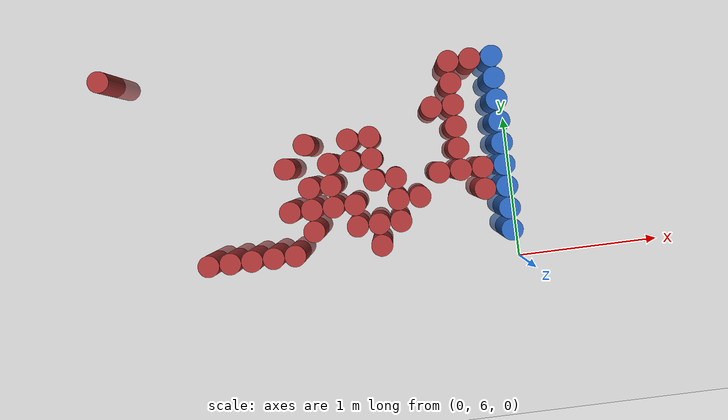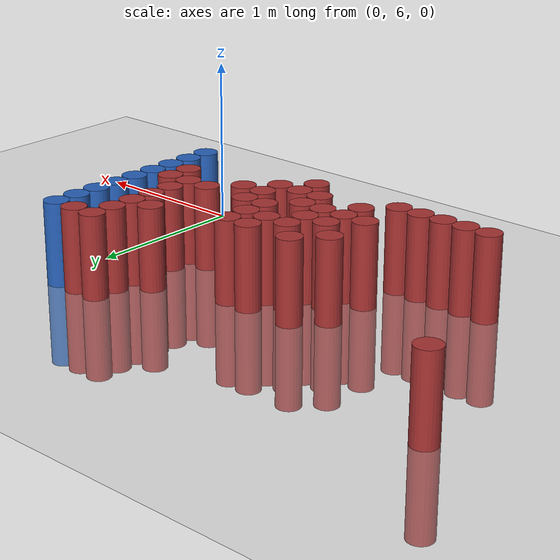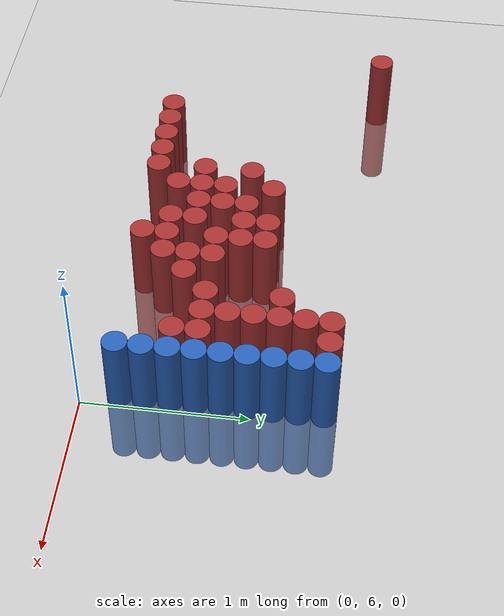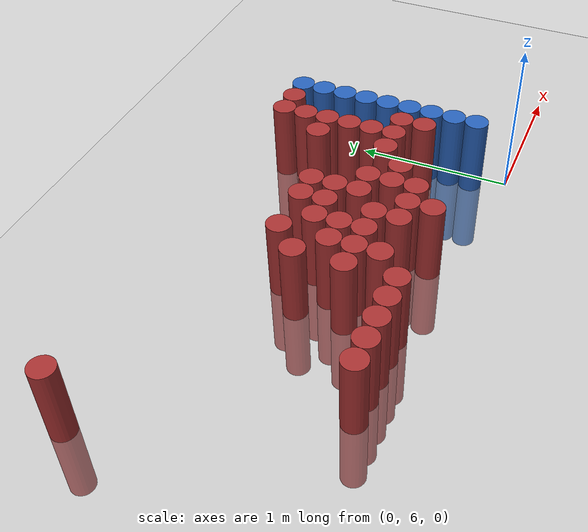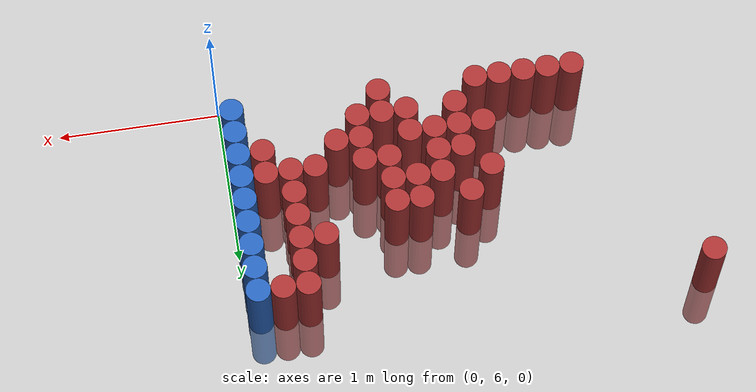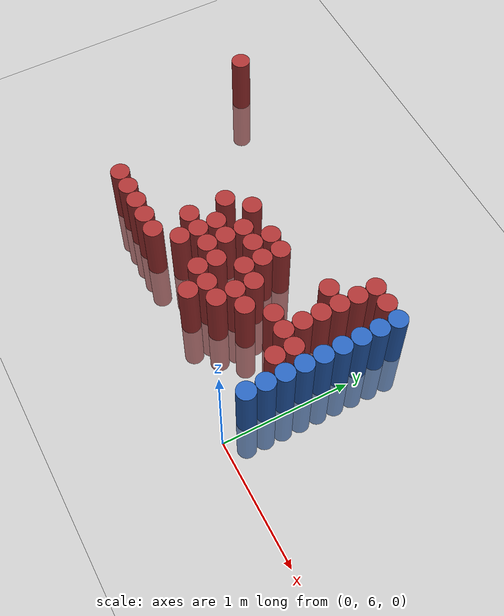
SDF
<sdf version="1.6">
 <world name="default">
  <model name="ground_plane">
   <static>1</static>
   <link name="link">
    <collision name="collision">
     <geometry><plane><normal>0 0 1</normal><size>100 100</size></plane></geometry>
     <surface><friction><ode><mu>100</mu><mu2>50</mu2></ode></friction></surface>
    </collision>
    <visual name="visual">
     <cast_shadows>0</cast_shadows>
     <geometry><plane><normal>0 0 1</normal><size>100 100</size></plane></geometry>
     <material>
      <script><uri>file://media/materials/scripts/gazebo.material</uri><name>Gazebo/Grey</name></script>
     </material>
    </visual>
   </link>
  </model>
  <model name="unit_cylinder_211">
   <static>1</static>
   <pose>-2.775000 7.575000 0.000000 0.000000 0.000000 0.000000</pose>
   <link name="link">
    <inertial>
     <mass>1</mass>
     <inertia><ixx>0.145833</ixx><ixy>0</ixy><ixz>0</ixz><iyy>0.145833</iyy><iyz>0</iyz><izz>0.125</izz></inertia>
    </inertial>
    <collision name="collision">
     <geometry><cylinder><radius>0.075000</radius><length>1</length></cylinder></geometry>
    </collision>
    <visual name="visual">
     <geometry><cylinder><radius>0.075000</radius><length>1</length></cylinder></geometry>
     <material>
      <ambient>0.648000 0.192000 0.192000 1</ambient>
      <diffuse>0.648000 0.192000 0.192000 1</diffuse>
     </material>
     <material>
      <script><name>Gazebo/Grey</name><uri>file://media/materials/scripts/gazebo.material</uri></script>
     </material>
    </visual>
   </link>
  </model>
  <model name="unit_cylinder_219">
   <static>1</static>
   <pose>-2.175000 6.225000 0.000000 0.000000 0.000000 0.000000</pose>
   <link name="link">
    <inertial>
     <mass>1</mass>
     <inertia><ixx>0.145833</ixx><ixy>0</ixy><ixz>0</ixz><iyy>0.145833</iyy><iyz>0</iyz><izz>0.125</izz></inertia>
    </inertial>
    <collision name="collision">
     <geometry><cylinder><radius>0.075000</radius><length>1</length></cylinder></geometry>
    </collision>
    <visual name="visual">
     <geometry><cylinder><radius>0.075000</radius><length>1</length></cylinder></geometry>
     <material>
      <ambient>0.648000 0.192000 0.192000 1</ambient>
      <diffuse>0.648000 0.192000 0.192000 1</diffuse>
     </material>
     <material>
      <script><name>Gazebo/Grey</name><uri>file://media/materials/scripts/gazebo.material</uri></script>
     </material>
    </visual>
   </link>
  </model>
  <model name="unit_cylinder_221">
   <static>1</static>
   <pose>-2.025000 6.225000 0.000000 0.000000 0.000000 0.000000</pose>
   <link name="link">
    <inertial>
     <mass>1</mass>
     <inertia><ixx>0.145833</ixx><ixy>0</ixy><ixz>0</ixz><iyy>0.145833</iyy><iyz>0</iyz><izz>0.125</izz></inertia>
    </inertial>
    <collision name="collision">
     <geometry><cylinder><radius>0.075000</radius><length>1</length></cylinder></geometry>
    </collision>
    <visual name="visual">
     <geometry><cylinder><radius>0.075000</radius><length>1</length></cylinder></geometry>
     <material>
      <ambient>0.648000 0.192000 0.192000 1</ambient>
      <diffuse>0.648000 0.192000 0.192000 1</diffuse>
     </material>
     <material>
      <script><name>Gazebo/Grey</name><uri>file://media/materials/scripts/gazebo.material</uri></script>
     </material>
    </visual>
   </link>
  </model>
  <model name="unit_cylinder_224">
   <static>1</static>
   <pose>-1.875000 6.225000 0.000000 0.000000 0.000000 0.000000</pose>
   <link name="link">
    <inertial>
     <mass>1</mass>
     <inertia><ixx>0.145833</ixx><ixy>0</ixy><ixz>0</ixz><iyy>0.145833</iyy><iyz>0</iyz><izz>0.125</izz></inertia>
    </inertial>
    <collision name="collision">
     <geometry><cylinder><radius>0.075000</radius><length>1</length></cylinder></geometry>
    </collision>
    <visual name="visual">
     <geometry><cylinder><radius>0.075000</radius><length>1</length></cylinder></geometry>
     <material>
      <ambient>0.648000 0.192000 0.192000 1</ambient>
      <diffuse>0.648000 0.192000 0.192000 1</diffuse>
     </material>
     <material>
      <script><name>Gazebo/Grey</name><uri>file://media/materials/scripts/gazebo.material</uri></script>
     </material>
    </visual>
   </link>
  </model>
  <model name="unit_cylinder_227">
   <static>1</static>
   <pose>-1.725000 6.225000 0.000000 0.000000 0.000000 0.000000</pose>
   <link name="link">
    <inertial>
     <mass>1</mass>
     <inertia><ixx>0.145833</ixx><ixy>0</ixy><ixz>0</ixz><iyy>0.145833</iyy><iyz>0</iyz><izz>0.125</izz></inertia>
    </inertial>
    <collision name="collision">
     <geometry><cylinder><radius>0.075000</radius><length>1</length></cylinder></geometry>
    </collision>
    <visual name="visual">
     <geometry><cylinder><radius>0.075000</radius><length>1</length></cylinder></geometry>
     <material>
      <ambient>0.648000 0.192000 0.192000 1</ambient>
      <diffuse>0.648000 0.192000 0.192000 1</diffuse>
     </material>
     <material>
      <script><name>Gazebo/Grey</name><uri>file://media/materials/scripts/gazebo.material</uri></script>
     </material>
    </visual>
   </link>
  </model>
  <model name="unit_cylinder_233">
   <static>1</static>
   <pose>-1.575000 6.225000 0.000000 0.000000 0.000000 0.000000</pose>
   <link name="link">
    <inertial>
     <mass>1</mass>
     <inertia><ixx>0.145833</ixx><ixy>0</ixy><ixz>0</ixz><iyy>0.145833</iyy><iyz>0</iyz><izz>0.125</izz></inertia>
    </inertial>
    <collision name="collision">
     <geometry><cylinder><radius>0.075000</radius><length>1</length></cylinder></geometry>
    </collision>
    <visual name="visual">
     <geometry><cylinder><radius>0.075000</radius><length>1</length></cylinder></geometry>
     <material>
      <ambient>0.648000 0.192000 0.192000 1</ambient>
      <diffuse>0.648000 0.192000 0.192000 1</diffuse>
     </material>
     <material>
      <script><name>Gazebo/Grey</name><uri>file://media/materials/scripts/gazebo.material</uri></script>
     </material>
    </visual>
   </link>
  </model>
  <model name="unit_cylinder_234">
   <static>1</static>
   <pose>-1.575000 6.525000 0.000000 0.000000 0.000000 0.000000</pose>
   <link name="link">
    <inertial>
     <mass>1</mass>
     <inertia><ixx>0.145833</ixx><ixy>0</ixy><ixz>0</ixz><iyy>0.145833</iyy><iyz>0</iyz><izz>0.125</izz></inertia>
    </inertial>
    <collision name="collision">
     <geometry><cylinder><radius>0.075000</radius><length>1</length></cylinder></geometry>
    </collision>
    <visual name="visual">
     <geometry><cylinder><radius>0.075000</radius><length>1</length></cylinder></geometry>
     <material>
      <ambient>0.648000 0.192000 0.192000 1</ambient>
      <diffuse>0.648000 0.192000 0.192000 1</diffuse>
     </material>
     <material>
      <script><name>Gazebo/Grey</name><uri>file://media/materials/scripts/gazebo.material</uri></script>
     </material>
    </visual>
   </link>
  </model>
  <model name="unit_cylinder_235">
   <static>1</static>
   <pose>-1.575000 6.825000 0.000000 0.000000 0.000000 0.000000</pose>
   <link name="link">
    <inertial>
     <mass>1</mass>
     <inertia><ixx>0.145833</ixx><ixy>0</ixy><ixz>0</ixz><iyy>0.145833</iyy><iyz>0</iyz><izz>0.125</izz></inertia>
    </inertial>
    <collision name="collision">
     <geometry><cylinder><radius>0.075000</radius><length>1</length></cylinder></geometry>
    </collision>
    <visual name="visual">
     <geometry><cylinder><radius>0.075000</radius><length>1</length></cylinder></geometry>
     <material>
      <ambient>0.648000 0.192000 0.192000 1</ambient>
      <diffuse>0.648000 0.192000 0.192000 1</diffuse>
     </material>
     <material>
      <script><name>Gazebo/Grey</name><uri>file://media/materials/scripts/gazebo.material</uri></script>
     </material>
    </visual>
   </link>
  </model>
  <model name="unit_cylinder_242">
   <static>1</static>
   <pose>-1.425000 6.375000 0.000000 0.000000 0.000000 0.000000</pose>
   <link name="link">
    <inertial>
     <mass>1</mass>
     <inertia><ixx>0.145833</ixx><ixy>0</ixy><ixz>0</ixz><iyy>0.145833</iyy><iyz>0</iyz><izz>0.125</izz></inertia>
    </inertial>
    <collision name="collision">
     <geometry><cylinder><radius>0.075000</radius><length>1</length></cylinder></geometry>
    </collision>
    <visual name="visual">
     <geometry><cylinder><radius>0.075000</radius><length>1</length></cylinder></geometry>
     <material>
      <ambient>0.648000 0.192000 0.192000 1</ambient>
      <diffuse>0.648000 0.192000 0.192000 1</diffuse>
     </material>
     <material>
      <script><name>Gazebo/Grey</name><uri>file://media/materials/scripts/gazebo.material</uri></script>
     </material>
    </visual>
   </link>
  </model>
  <model name="unit_cylinder_243">
   <static>1</static>
   <pose>-1.425000 6.525000 0.000000 0.000000 0.000000 0.000000</pose>
   <link name="link">
    <inertial>
     <mass>1</mass>
     <inertia><ixx>0.145833</ixx><ixy>0</ixy><ixz>0</ixz><iyy>0.145833</iyy><iyz>0</iyz><izz>0.125</izz></inertia>
    </inertial>
    <collision name="collision">
     <geometry><cylinder><radius>0.075000</radius><length>1</length></cylinder></geometry>
    </collision>
    <visual name="visual">
     <geometry><cylinder><radius>0.075000</radius><length>1</length></cylinder></geometry>
     <material>
      <ambient>0.648000 0.192000 0.192000 1</ambient>
      <diffuse>0.648000 0.192000 0.192000 1</diffuse>
     </material>
     <material>
      <script><name>Gazebo/Grey</name><uri>file://media/materials/scripts/gazebo.material</uri></script>
     </material>
    </visual>
   </link>
  </model>
  <model name="unit_cylinder_244">
   <static>1</static>
   <pose>-1.425000 6.675000 0.000000 0.000000 0.000000 0.000000</pose>
   <link name="link">
    <inertial>
     <mass>1</mass>
     <inertia><ixx>0.145833</ixx><ixy>0</ixy><ixz>0</ixz><iyy>0.145833</iyy><iyz>0</iyz><izz>0.125</izz></inertia>
    </inertial>
    <collision name="collision">
     <geometry><cylinder><radius>0.075000</radius><length>1</length></cylinder></geometry>
    </collision>
    <visual name="visual">
     <geometry><cylinder><radius>0.075000</radius><length>1</length></cylinder></geometry>
     <material>
      <ambient>0.648000 0.192000 0.192000 1</ambient>
      <diffuse>0.648000 0.192000 0.192000 1</diffuse>
     </material>
     <material>
      <script><name>Gazebo/Grey</name><uri>file://media/materials/scripts/gazebo.material</uri></script>
     </material>
    </visual>
   </link>
  </model>
  <model name="unit_cylinder_245">
   <static>1</static>
   <pose>-1.425000 6.975000 0.000000 0.000000 0.000000 0.000000</pose>
   <link name="link">
    <inertial>
     <mass>1</mass>
     <inertia><ixx>0.145833</ixx><ixy>0</ixy><ixz>0</ixz><iyy>0.145833</iyy><iyz>0</iyz><izz>0.125</izz></inertia>
    </inertial>
    <collision name="collision">
     <geometry><cylinder><radius>0.075000</radius><length>1</length></cylinder></geometry>
    </collision>
    <visual name="visual">
     <geometry><cylinder><radius>0.075000</radius><length>1</length></cylinder></geometry>
     <material>
      <ambient>0.648000 0.192000 0.192000 1</ambient>
      <diffuse>0.648000 0.192000 0.192000 1</diffuse>
     </material>
     <material>
      <script><name>Gazebo/Grey</name><uri>file://media/materials/scripts/gazebo.material</uri></script>
     </material>
    </visual>
   </link>
  </model>
  <model name="unit_cylinder_252">
   <static>1</static>
   <pose>-1.275000 6.525000 0.000000 0.000000 0.000000 0.000000</pose>
   <link name="link">
    <inertial>
     <mass>1</mass>
     <inertia><ixx>0.145833</ixx><ixy>0</ixy><ixz>0</ixz><iyy>0.145833</iyy><iyz>0</iyz><izz>0.125</izz></inertia>
    </inertial>
    <collision name="collision">
     <geometry><cylinder><radius>0.075000</radius><length>1</length></cylinder></geometry>
    </collision>
    <visual name="visual">
     <geometry><cylinder><radius>0.075000</radius><length>1</length></cylinder></geometry>
     <material>
      <ambient>0.648000 0.192000 0.192000 1</ambient>
      <diffuse>0.648000 0.192000 0.192000 1</diffuse>
     </material>
     <material>
      <script><name>Gazebo/Grey</name><uri>file://media/materials/scripts/gazebo.material</uri></script>
     </material>
    </visual>
   </link>
  </model>
  <model name="unit_cylinder_253">
   <static>1</static>
   <pose>-1.275000 6.675000 0.000000 0.000000 0.000000 0.000000</pose>
   <link name="link">
    <inertial>
     <mass>1</mass>
     <inertia><ixx>0.145833</ixx><ixy>0</ixy><ixz>0</ixz><iyy>0.145833</iyy><iyz>0</iyz><izz>0.125</izz></inertia>
    </inertial>
    <collision name="collision">
     <geometry><cylinder><radius>0.075000</radius><length>1</length></cylinder></geometry>
    </collision>
    <visual name="visual">
     <geometry><cylinder><radius>0.075000</radius><length>1</length></cylinder></geometry>
     <material>
      <ambient>0.648000 0.192000 0.192000 1</ambient>
      <diffuse>0.648000 0.192000 0.192000 1</diffuse>
     </material>
     <material>
      <script><name>Gazebo/Grey</name><uri>file://media/materials/scripts/gazebo.material</uri></script>
     </material>
    </visual>
   </link>
  </model>
  <model name="unit_cylinder_254">
   <static>1</static>
   <pose>-1.275000 6.825000 0.000000 0.000000 0.000000 0.000000</pose>
   <link name="link">
    <inertial>
     <mass>1</mass>
     <inertia><ixx>0.145833</ixx><ixy>0</ixy><ixz>0</ixz><iyy>0.145833</iyy><iyz>0</iyz><izz>0.125</izz></inertia>
    </inertial>
    <collision name="collision">
     <geometry><cylinder><radius>0.075000</radius><length>1</length></cylinder></geometry>
    </collision>
    <visual name="visual">
     <geometry><cylinder><radius>0.075000</radius><length>1</length></cylinder></geometry>
     <material>
      <ambient>0.648000 0.192000 0.192000 1</ambient>
      <diffuse>0.648000 0.192000 0.192000 1</diffuse>
     </material>
     <material>
      <script><name>Gazebo/Grey</name><uri>file://media/materials/scripts/gazebo.material</uri></script>
     </material>
    </visual>
   </link>
  </model>
  <model name="unit_cylinder_258">
   <static>1</static>
   <pose>-1.125000 6.375000 0.000000 0.000000 0.000000 0.000000</pose>
   <link name="link">
    <inertial>
     <mass>1</mass>
     <inertia><ixx>0.145833</ixx><ixy>0</ixy><ixz>0</ixz><iyy>0.145833</iyy><iyz>0</iyz><izz>0.125</izz></inertia>
    </inertial>
    <collision name="collision">
     <geometry><cylinder><radius>0.075000</radius><length>1</length></cylinder></geometry>
    </collision>
    <visual name="visual">
     <geometry><cylinder><radius>0.075000</radius><length>1</length></cylinder></geometry>
     <material>
      <ambient>0.648000 0.192000 0.192000 1</ambient>
      <diffuse>0.648000 0.192000 0.192000 1</diffuse>
     </material>
     <material>
      <script><name>Gazebo/Grey</name><uri>file://media/materials/scripts/gazebo.material</uri></script>
     </material>
    </visual>
   </link>
  </model>
  <model name="unit_cylinder_259">
   <static>1</static>
   <pose>-1.125000 6.525000 0.000000 0.000000 0.000000 0.000000</pose>
   <link name="link">
    <inertial>
     <mass>1</mass>
     <inertia><ixx>0.145833</ixx><ixy>0</ixy><ixz>0</ixz><iyy>0.145833</iyy><iyz>0</iyz><izz>0.125</izz></inertia>
    </inertial>
    <collision name="collision">
     <geometry><cylinder><radius>0.075000</radius><length>1</length></cylinder></geometry>
    </collision>
    <visual name="visual">
     <geometry><cylinder><radius>0.075000</radius><length>1</length></cylinder></geometry>
     <material>
      <ambient>0.648000 0.192000 0.192000 1</ambient>
      <diffuse>0.648000 0.192000 0.192000 1</diffuse>
     </material>
     <material>
      <script><name>Gazebo/Grey</name><uri>file://media/materials/scripts/gazebo.material</uri></script>
     </material>
    </visual>
   </link>
  </model>
  <model name="unit_cylinder_260">
   <static>1</static>
   <pose>-1.125000 6.825000 0.000000 0.000000 0.000000 0.000000</pose>
   <link name="link">
    <inertial>
     <mass>1</mass>
     <inertia><ixx>0.145833</ixx><ixy>0</ixy><ixz>0</ixz><iyy>0.145833</iyy><iyz>0</iyz><izz>0.125</izz></inertia>
    </inertial>
    <collision name="collision">
     <geometry><cylinder><radius>0.075000</radius><length>1</length></cylinder></geometry>
    </collision>
    <visual name="visual">
     <geometry><cylinder><radius>0.075000</radius><length>1</length></cylinder></geometry>
     <material>
      <ambient>0.648000 0.192000 0.192000 1</ambient>
      <diffuse>0.648000 0.192000 0.192000 1</diffuse>
     </material>
     <material>
      <script><name>Gazebo/Grey</name><uri>file://media/materials/scripts/gazebo.material</uri></script>
     </material>
    </visual>
   </link>
  </model>
  <model name="unit_cylinder_261">
   <static>1</static>
   <pose>-1.125000 6.975000 0.000000 0.000000 0.000000 0.000000</pose>
   <link name="link">
    <inertial>
     <mass>1</mass>
     <inertia><ixx>0.145833</ixx><ixy>0</ixy><ixz>0</ixz><iyy>0.145833</iyy><iyz>0</iyz><izz>0.125</izz></inertia>
    </inertial>
    <collision name="collision">
     <geometry><cylinder><radius>0.075000</radius><length>1</length></cylinder></geometry>
    </collision>
    <visual name="visual">
     <geometry><cylinder><radius>0.075000</radius><length>1</length></cylinder></geometry>
     <material>
      <ambient>0.648000 0.192000 0.192000 1</ambient>
      <diffuse>0.648000 0.192000 0.192000 1</diffuse>
     </material>
     <material>
      <script><name>Gazebo/Grey</name><uri>file://media/materials/scripts/gazebo.material</uri></script>
     </material>
    </visual>
   </link>
  </model>
  <model name="unit_cylinder_262">
   <static>1</static>
   <pose>-0.975000 6.225000 0.000000 0.000000 0.000000 0.000000</pose>
   <link name="link">
    <inertial>
     <mass>1</mass>
     <inertia><ixx>0.145833</ixx><ixy>0</ixy><ixz>0</ixz><iyy>0.145833</iyy><iyz>0</iyz><izz>0.125</izz></inertia>
    </inertial>
    <collision name="collision">
     <geometry><cylinder><radius>0.075000</radius><length>1</length></cylinder></geometry>
    </collision>
    <visual name="visual">
     <geometry><cylinder><radius>0.075000</radius><length>1</length></cylinder></geometry>
     <material>
      <ambient>0.648000 0.192000 0.192000 1</ambient>
      <diffuse>0.648000 0.192000 0.192000 1</diffuse>
     </material>
     <material>
      <script><name>Gazebo/Grey</name><uri>file://media/materials/scripts/gazebo.material</uri></script>
     </material>
    </visual>
   </link>
  </model>
  <model name="unit_cylinder_263">
   <static>1</static>
   <pose>-0.975000 6.375000 0.000000 0.000000 0.000000 0.000000</pose>
   <link name="link">
    <inertial>
     <mass>1</mass>
     <inertia><ixx>0.145833</ixx><ixy>0</ixy><ixz>0</ixz><iyy>0.145833</iyy><iyz>0</iyz><izz>0.125</izz></inertia>
    </inertial>
    <collision name="collision">
     <geometry><cylinder><radius>0.075000</radius><length>1</length></cylinder></geometry>
    </collision>
    <visual name="visual">
     <geometry><cylinder><radius>0.075000</radius><length>1</length></cylinder></geometry>
     <material>
      <ambient>0.648000 0.192000 0.192000 1</ambient>
      <diffuse>0.648000 0.192000 0.192000 1</diffuse>
     </material>
     <material>
      <script><name>Gazebo/Grey</name><uri>file://media/materials/scripts/gazebo.material</uri></script>
     </material>
    </visual>
   </link>
  </model>
  <model name="unit_cylinder_264">
   <static>1</static>
   <pose>-0.975000 6.675000 0.000000 0.000000 0.000000 0.000000</pose>
   <link name="link">
    <inertial>
     <mass>1</mass>
     <inertia><ixx>0.145833</ixx><ixy>0</ixy><ixz>0</ixz><iyy>0.145833</iyy><iyz>0</iyz><izz>0.125</izz></inertia>
    </inertial>
    <collision name="collision">
     <geometry><cylinder><radius>0.075000</radius><length>1</length></cylinder></geometry>
    </collision>
    <visual name="visual">
     <geometry><cylinder><radius>0.075000</radius><length>1</length></cylinder></geometry>
     <material>
      <ambient>0.648000 0.192000 0.192000 1</ambient>
      <diffuse>0.648000 0.192000 0.192000 1</diffuse>
     </material>
     <material>
      <script><name>Gazebo/Grey</name><uri>file://media/materials/scripts/gazebo.material</uri></script>
     </material>
    </visual>
   </link>
  </model>
  <model name="unit_cylinder_265">
   <static>1</static>
   <pose>-0.975000 6.825000 0.000000 0.000000 0.000000 0.000000</pose>
   <link name="link">
    <inertial>
     <mass>1</mass>
     <inertia><ixx>0.145833</ixx><ixy>0</ixy><ixz>0</ixz><iyy>0.145833</iyy><iyz>0</iyz><izz>0.125</izz></inertia>
    </inertial>
    <collision name="collision">
     <geometry><cylinder><radius>0.075000</radius><length>1</length></cylinder></geometry>
    </collision>
    <visual name="visual">
     <geometry><cylinder><radius>0.075000</radius><length>1</length></cylinder></geometry>
     <material>
      <ambient>0.648000 0.192000 0.192000 1</ambient>
      <diffuse>0.648000 0.192000 0.192000 1</diffuse>
     </material>
     <material>
      <script><name>Gazebo/Grey</name><uri>file://media/materials/scripts/gazebo.material</uri></script>
     </material>
    </visual>
   </link>
  </model>
  <model name="unit_cylinder_266">
   <static>1</static>
   <pose>-0.975000 6.975000 0.000000 0.000000 0.000000 0.000000</pose>
   <link name="link">
    <inertial>
     <mass>1</mass>
     <inertia><ixx>0.145833</ixx><ixy>0</ixy><ixz>0</ixz><iyy>0.145833</iyy><iyz>0</iyz><izz>0.125</izz></inertia>
    </inertial>
    <collision name="collision">
     <geometry><cylinder><radius>0.075000</radius><length>1</length></cylinder></geometry>
    </collision>
    <visual name="visual">
     <geometry><cylinder><radius>0.075000</radius><length>1</length></cylinder></geometry>
     <material>
      <ambient>0.648000 0.192000 0.192000 1</ambient>
      <diffuse>0.648000 0.192000 0.192000 1</diffuse>
     </material>
     <material>
      <script><name>Gazebo/Grey</name><uri>file://media/materials/scripts/gazebo.material</uri></script>
     </material>
    </visual>
   </link>
  </model>
  <model name="unit_cylinder_267">
   <static>1</static>
   <pose>-0.825000 6.375000 0.000000 0.000000 0.000000 0.000000</pose>
   <link name="link">
    <inertial>
     <mass>1</mass>
     <inertia><ixx>0.145833</ixx><ixy>0</ixy><ixz>0</ixz><iyy>0.145833</iyy><iyz>0</iyz><izz>0.125</izz></inertia>
    </inertial>
    <collision name="collision">
     <geometry><cylinder><radius>0.075000</radius><length>1</length></cylinder></geometry>
    </collision>
    <visual name="visual">
     <geometry><cylinder><radius>0.075000</radius><length>1</length></cylinder></geometry>
     <material>
      <ambient>0.648000 0.192000 0.192000 1</ambient>
      <diffuse>0.648000 0.192000 0.192000 1</diffuse>
     </material>
     <material>
      <script><name>Gazebo/Grey</name><uri>file://media/materials/scripts/gazebo.material</uri></script>
     </material>
    </visual>
   </link>
  </model>
  <model name="unit_cylinder_268">
   <static>1</static>
   <pose>-0.825000 6.525000 0.000000 0.000000 0.000000 0.000000</pose>
   <link name="link">
    <inertial>
     <mass>1</mass>
     <inertia><ixx>0.145833</ixx><ixy>0</ixy><ixz>0</ixz><iyy>0.145833</iyy><iyz>0</iyz><izz>0.125</izz></inertia>
    </inertial>
    <collision name="collision">
     <geometry><cylinder><radius>0.075000</radius><length>1</length></cylinder></geometry>
    </collision>
    <visual name="visual">
     <geometry><cylinder><radius>0.075000</radius><length>1</length></cylinder></geometry>
     <material>
      <ambient>0.648000 0.192000 0.192000 1</ambient>
      <diffuse>0.648000 0.192000 0.192000 1</diffuse>
     </material>
     <material>
      <script><name>Gazebo/Grey</name><uri>file://media/materials/scripts/gazebo.material</uri></script>
     </material>
    </visual>
   </link>
  </model>
  <model name="unit_cylinder_269">
   <static>1</static>
   <pose>-0.825000 6.675000 0.000000 0.000000 0.000000 0.000000</pose>
   <link name="link">
    <inertial>
     <mass>1</mass>
     <inertia><ixx>0.145833</ixx><ixy>0</ixy><ixz>0</ixz><iyy>0.145833</iyy><iyz>0</iyz><izz>0.125</izz></inertia>
    </inertial>
    <collision name="collision">
     <geometry><cylinder><radius>0.075000</radius><length>1</length></cylinder></geometry>
    </collision>
    <visual name="visual">
     <geometry><cylinder><radius>0.075000</radius><length>1</length></cylinder></geometry>
     <material>
      <ambient>0.648000 0.192000 0.192000 1</ambient>
      <diffuse>0.648000 0.192000 0.192000 1</diffuse>
     </material>
     <material>
      <script><name>Gazebo/Grey</name><uri>file://media/materials/scripts/gazebo.material</uri></script>
     </material>
    </visual>
   </link>
  </model>
  <model name="unit_cylinder_270">
   <static>1</static>
   <pose>-0.675000 6.525000 0.000000 0.000000 0.000000 0.000000</pose>
   <link name="link">
    <inertial>
     <mass>1</mass>
     <inertia><ixx>0.145833</ixx><ixy>0</ixy><ixz>0</ixz><iyy>0.145833</iyy><iyz>0</iyz><izz>0.125</izz></inertia>
    </inertial>
    <collision name="collision">
     <geometry><cylinder><radius>0.075000</radius><length>1</length></cylinder></geometry>
    </collision>
    <visual name="visual">
     <geometry><cylinder><radius>0.075000</radius><length>1</length></cylinder></geometry>
     <material>
      <ambient>0.648000 0.192000 0.192000 1</ambient>
      <diffuse>0.648000 0.192000 0.192000 1</diffuse>
     </material>
     <material>
      <script><name>Gazebo/Grey</name><uri>file://media/materials/scripts/gazebo.material</uri></script>
     </material>
    </visual>
   </link>
  </model>
  <model name="unit_cylinder_272">
   <static>1</static>
   <pose>-0.525000 6.675000 0.000000 0.000000 0.000000 0.000000</pose>
   <link name="link">
    <inertial>
     <mass>1</mass>
     <inertia><ixx>0.145833</ixx><ixy>0</ixy><ixz>0</ixz><iyy>0.145833</iyy><iyz>0</iyz><izz>0.125</izz></inertia>
    </inertial>
    <collision name="collision">
     <geometry><cylinder><radius>0.075000</radius><length>1</length></cylinder></geometry>
    </collision>
    <visual name="visual">
     <geometry><cylinder><radius>0.075000</radius><length>1</length></cylinder></geometry>
     <material>
      <ambient>0.648000 0.192000 0.192000 1</ambient>
      <diffuse>0.648000 0.192000 0.192000 1</diffuse>
     </material>
     <material>
      <script><name>Gazebo/Grey</name><uri>file://media/materials/scripts/gazebo.material</uri></script>
     </material>
    </visual>
   </link>
  </model>
  <model name="unit_cylinder_273">
   <static>1</static>
   <pose>-0.525000 7.125000 0.000000 0.000000 0.000000 0.000000</pose>
   <link name="link">
    <inertial>
     <mass>1</mass>
     <inertia><ixx>0.145833</ixx><ixy>0</ixy><ixz>0</ixz><iyy>0.145833</iyy><iyz>0</iyz><izz>0.125</izz></inertia>
    </inertial>
    <collision name="collision">
     <geometry><cylinder><radius>0.075000</radius><length>1</length></cylinder></geometry>
    </collision>
    <visual name="visual">
     <geometry><cylinder><radius>0.075000</radius><length>1</length></cylinder></geometry>
     <material>
      <ambient>0.648000 0.192000 0.192000 1</ambient>
      <diffuse>0.648000 0.192000 0.192000 1</diffuse>
     </material>
     <material>
      <script><name>Gazebo/Grey</name><uri>file://media/materials/scripts/gazebo.material</uri></script>
     </material>
    </visual>
   </link>
  </model>
  <model name="unit_cylinder_282">
   <static>1</static>
   <pose>-0.375000 6.675000 0.000000 0.000000 0.000000 0.000000</pose>
   <link name="link">
    <inertial>
     <mass>1</mass>
     <inertia><ixx>0.145833</ixx><ixy>0</ixy><ixz>0</ixz><iyy>0.145833</iyy><iyz>0</iyz><izz>0.125</izz></inertia>
    </inertial>
    <collision name="collision">
     <geometry><cylinder><radius>0.075000</radius><length>1</length></cylinder></geometry>
    </collision>
    <visual name="visual">
     <geometry><cylinder><radius>0.075000</radius><length>1</length></cylinder></geometry>
     <material>
      <ambient>0.648000 0.192000 0.192000 1</ambient>
      <diffuse>0.648000 0.192000 0.192000 1</diffuse>
     </material>
     <material>
      <script><name>Gazebo/Grey</name><uri>file://media/materials/scripts/gazebo.material</uri></script>
     </material>
    </visual>
   </link>
  </model>
  <model name="unit_cylinder_283">
   <static>1</static>
   <pose>-0.375000 6.825000 0.000000 0.000000 0.000000 0.000000</pose>
   <link name="link">
    <inertial>
     <mass>1</mass>
     <inertia><ixx>0.145833</ixx><ixy>0</ixy><ixz>0</ixz><iyy>0.145833</iyy><iyz>0</iyz><izz>0.125</izz></inertia>
    </inertial>
    <collision name="collision">
     <geometry><cylinder><radius>0.075000</radius><length>1</length></cylinder></geometry>
    </collision>
    <visual name="visual">
     <geometry><cylinder><radius>0.075000</radius><length>1</length></cylinder></geometry>
     <material>
      <ambient>0.648000 0.192000 0.192000 1</ambient>
      <diffuse>0.648000 0.192000 0.192000 1</diffuse>
     </material>
     <material>
      <script><name>Gazebo/Grey</name><uri>file://media/materials/scripts/gazebo.material</uri></script>
     </material>
    </visual>
   </link>
  </model>
  <model name="unit_cylinder_284">
   <static>1</static>
   <pose>-0.375000 6.975000 0.000000 0.000000 0.000000 0.000000</pose>
   <link name="link">
    <inertial>
     <mass>1</mass>
     <inertia><ixx>0.145833</ixx><ixy>0</ixy><ixz>0</ixz><iyy>0.145833</iyy><iyz>0</iyz><izz>0.125</izz></inertia>
    </inertial>
    <collision name="collision">
     <geometry><cylinder><radius>0.075000</radius><length>1</length></cylinder></geometry>
    </collision>
    <visual name="visual">
     <geometry><cylinder><radius>0.075000</radius><length>1</length></cylinder></geometry>
     <material>
      <ambient>0.648000 0.192000 0.192000 1</ambient>
      <diffuse>0.648000 0.192000 0.192000 1</diffuse>
     </material>
     <material>
      <script><name>Gazebo/Grey</name><uri>file://media/materials/scripts/gazebo.material</uri></script>
     </material>
    </visual>
   </link>
  </model>
  <model name="unit_cylinder_285">
   <static>1</static>
   <pose>-0.375000 7.125000 0.000000 0.000000 0.000000 0.000000</pose>
   <link name="link">
    <inertial>
     <mass>1</mass>
     <inertia><ixx>0.145833</ixx><ixy>0</ixy><ixz>0</ixz><iyy>0.145833</iyy><iyz>0</iyz><izz>0.125</izz></inertia>
    </inertial>
    <collision name="collision">
     <geometry><cylinder><radius>0.075000</radius><length>1</length></cylinder></geometry>
    </collision>
    <visual name="visual">
     <geometry><cylinder><radius>0.075000</radius><length>1</length></cylinder></geometry>
     <material>
      <ambient>0.648000 0.192000 0.192000 1</ambient>
      <diffuse>0.648000 0.192000 0.192000 1</diffuse>
     </material>
     <material>
      <script><name>Gazebo/Grey</name><uri>file://media/materials/scripts/gazebo.material</uri></script>
     </material>
    </visual>
   </link>
  </model>
  <model name="unit_cylinder_286">
   <static>1</static>
   <pose>-0.375000 7.275000 0.000000 0.000000 0.000000 0.000000</pose>
   <link name="link">
    <inertial>
     <mass>1</mass>
     <inertia><ixx>0.145833</ixx><ixy>0</ixy><ixz>0</ixz><iyy>0.145833</iyy><iyz>0</iyz><izz>0.125</izz></inertia>
    </inertial>
    <collision name="collision">
     <geometry><cylinder><radius>0.075000</radius><length>1</length></cylinder></geometry>
    </collision>
    <visual name="visual">
     <geometry><cylinder><radius>0.075000</radius><length>1</length></cylinder></geometry>
     <material>
      <ambient>0.648000 0.192000 0.192000 1</ambient>
      <diffuse>0.648000 0.192000 0.192000 1</diffuse>
     </material>
     <material>
      <script><name>Gazebo/Grey</name><uri>file://media/materials/scripts/gazebo.material</uri></script>
     </material>
    </visual>
   </link>
  </model>
  <model name="unit_cylinder_287">
   <static>1</static>
   <pose>-0.375000 7.425000 0.000000 0.000000 0.000000 0.000000</pose>
   <link name="link">
    <inertial>
     <mass>1</mass>
     <inertia><ixx>0.145833</ixx><ixy>0</ixy><ixz>0</ixz><iyy>0.145833</iyy><iyz>0</iyz><izz>0.125</izz></inertia>
    </inertial>
    <collision name="collision">
     <geometry><cylinder><radius>0.075000</radius><length>1</length></cylinder></geometry>
    </collision>
    <visual name="visual">
     <geometry><cylinder><radius>0.075000</radius><length>1</length></cylinder></geometry>
     <material>
      <ambient>0.648000 0.192000 0.192000 1</ambient>
      <diffuse>0.648000 0.192000 0.192000 1</diffuse>
     </material>
     <material>
      <script><name>Gazebo/Grey</name><uri>file://media/materials/scripts/gazebo.material</uri></script>
     </material>
    </visual>
   </link>
  </model>
  <model name="unit_cylinder_295">
   <static>1</static>
   <pose>-0.225000 6.525000 0.000000 0.000000 0.000000 0.000000</pose>
   <link name="link">
    <inertial>
     <mass>1</mass>
     <inertia><ixx>0.145833</ixx><ixy>0</ixy><ixz>0</ixz><iyy>0.145833</iyy><iyz>0</iyz><izz>0.125</izz></inertia>
    </inertial>
    <collision name="collision">
     <geometry><cylinder><radius>0.075000</radius><length>1</length></cylinder></geometry>
    </collision>
    <visual name="visual">
     <geometry><cylinder><radius>0.075000</radius><length>1</length></cylinder></geometry>
     <material>
      <ambient>0.648000 0.192000 0.192000 1</ambient>
      <diffuse>0.648000 0.192000 0.192000 1</diffuse>
     </material>
     <material>
      <script><name>Gazebo/Grey</name><uri>file://media/materials/scripts/gazebo.material</uri></script>
     </material>
    </visual>
   </link>
  </model>
  <model name="unit_cylinder_296">
   <static>1</static>
   <pose>-0.225000 6.675000 0.000000 0.000000 0.000000 0.000000</pose>
   <link name="link">
    <inertial>
     <mass>1</mass>
     <inertia><ixx>0.145833</ixx><ixy>0</ixy><ixz>0</ixz><iyy>0.145833</iyy><iyz>0</iyz><izz>0.125</izz></inertia>
    </inertial>
    <collision name="collision">
     <geometry><cylinder><radius>0.075000</radius><length>1</length></cylinder></geometry>
    </collision>
    <visual name="visual">
     <geometry><cylinder><radius>0.075000</radius><length>1</length></cylinder></geometry>
     <material>
      <ambient>0.648000 0.192000 0.192000 1</ambient>
      <diffuse>0.648000 0.192000 0.192000 1</diffuse>
     </material>
     <material>
      <script><name>Gazebo/Grey</name><uri>file://media/materials/scripts/gazebo.material</uri></script>
     </material>
    </visual>
   </link>
  </model>
  <model name="unit_cylinder_297">
   <static>1</static>
   <pose>-0.225000 7.425000 0.000000 0.000000 0.000000 0.000000</pose>
   <link name="link">
    <inertial>
     <mass>1</mass>
     <inertia><ixx>0.145833</ixx><ixy>0</ixy><ixz>0</ixz><iyy>0.145833</iyy><iyz>0</iyz><izz>0.125</izz></inertia>
    </inertial>
    <collision name="collision">
     <geometry><cylinder><radius>0.075000</radius><length>1</length></cylinder></geometry>
    </collision>
    <visual name="visual">
     <geometry><cylinder><radius>0.075000</radius><length>1</length></cylinder></geometry>
     <material>
      <ambient>0.648000 0.192000 0.192000 1</ambient>
      <diffuse>0.648000 0.192000 0.192000 1</diffuse>
     </material>
     <material>
      <script><name>Gazebo/Grey</name><uri>file://media/materials/scripts/gazebo.material</uri></script>
     </material>
    </visual>
   </link>
  </model>
  <model name="unit_cylinder_313">
   <static>1</static>
   <pose>-0.075000 6.225000 0.000000 0.000000 0.000000 0.000000</pose>
   <link name="link">
    <inertial>
     <mass>1</mass>
     <inertia><ixx>0.145833</ixx><ixy>0</ixy><ixz>0</ixz><iyy>0.145833</iyy><iyz>0</iyz><izz>0.125</izz></inertia>
    </inertial>
    <collision name="collision">
     <geometry><cylinder><radius>0.075000</radius><length>1</length></cylinder></geometry>
    </collision>
    <visual name="visual">
     <geometry><cylinder><radius>0.075000</radius><length>1</length></cylinder></geometry>
     <material>
      <ambient>0.152000 0.379000 0.720000 1</ambient>
      <diffuse>0.152000 0.379000 0.720000 1</diffuse>
     </material>
     <material>
      <script><name>Gazebo/Grey</name><uri>file://media/materials/scripts/gazebo.material</uri></script>
     </material>
    </visual>
   </link>
  </model>
  <model name="unit_cylinder_314">
   <static>1</static>
   <pose>-0.075000 6.375000 0.000000 0.000000 0.000000 0.000000</pose>
   <link name="link">
    <inertial>
     <mass>1</mass>
     <inertia><ixx>0.145833</ixx><ixy>0</ixy><ixz>0</ixz><iyy>0.145833</iyy><iyz>0</iyz><izz>0.125</izz></inertia>
    </inertial>
    <collision name="collision">
     <geometry><cylinder><radius>0.075000</radius><length>1</length></cylinder></geometry>
    </collision>
    <visual name="visual">
     <geometry><cylinder><radius>0.075000</radius><length>1</length></cylinder></geometry>
     <material>
      <ambient>0.152000 0.379000 0.720000 1</ambient>
      <diffuse>0.152000 0.379000 0.720000 1</diffuse>
     </material>
     <material>
      <script><name>Gazebo/Grey</name><uri>file://media/materials/scripts/gazebo.material</uri></script>
     </material>
    </visual>
   </link>
  </model>
  <model name="unit_cylinder_315">
   <static>1</static>
   <pose>-0.075000 6.525000 0.000000 0.000000 0.000000 0.000000</pose>
   <link name="link">
    <inertial>
     <mass>1</mass>
     <inertia><ixx>0.145833</ixx><ixy>0</ixy><ixz>0</ixz><iyy>0.145833</iyy><iyz>0</iyz><izz>0.125</izz></inertia>
    </inertial>
    <collision name="collision">
     <geometry><cylinder><radius>0.075000</radius><length>1</length></cylinder></geometry>
    </collision>
    <visual name="visual">
     <geometry><cylinder><radius>0.075000</radius><length>1</length></cylinder></geometry>
     <material>
      <ambient>0.152000 0.379000 0.720000 1</ambient>
      <diffuse>0.152000 0.379000 0.720000 1</diffuse>
     </material>
     <material>
      <script><name>Gazebo/Grey</name><uri>file://media/materials/scripts/gazebo.material</uri></script>
     </material>
    </visual>
   </link>
  </model>
  <model name="unit_cylinder_316">
   <static>1</static>
   <pose>-0.075000 6.675000 0.000000 0.000000 0.000000 0.000000</pose>
   <link name="link">
    <inertial>
     <mass>1</mass>
     <inertia><ixx>0.145833</ixx><ixy>0</ixy><ixz>0</ixz><iyy>0.145833</iyy><iyz>0</iyz><izz>0.125</izz></inertia>
    </inertial>
    <collision name="collision">
     <geometry><cylinder><radius>0.075000</radius><length>1</length></cylinder></geometry>
    </collision>
    <visual name="visual">
     <geometry><cylinder><radius>0.075000</radius><length>1</length></cylinder></geometry>
     <material>
      <ambient>0.152000 0.379000 0.720000 1</ambient>
      <diffuse>0.152000 0.379000 0.720000 1</diffuse>
     </material>
     <material>
      <script><name>Gazebo/Grey</name><uri>file://media/materials/scripts/gazebo.material</uri></script>
     </material>
    </visual>
   </link>
  </model>
  <model name="unit_cylinder_317">
   <static>1</static>
   <pose>-0.075000 6.825000 0.000000 0.000000 0.000000 0.000000</pose>
   <link name="link">
    <inertial>
     <mass>1</mass>
     <inertia><ixx>0.145833</ixx><ixy>0</ixy><ixz>0</ixz><iyy>0.145833</iyy><iyz>0</iyz><izz>0.125</izz></inertia>
    </inertial>
    <collision name="collision">
     <geometry><cylinder><radius>0.075000</radius><length>1</length></cylinder></geometry>
    </collision>
    <visual name="visual">
     <geometry><cylinder><radius>0.075000</radius><length>1</length></cylinder></geometry>
     <material>
      <ambient>0.152000 0.379000 0.720000 1</ambient>
      <diffuse>0.152000 0.379000 0.720000 1</diffuse>
     </material>
     <material>
      <script><name>Gazebo/Grey</name><uri>file://media/materials/scripts/gazebo.material</uri></script>
     </material>
    </visual>
   </link>
  </model>
  <model name="unit_cylinder_318">
   <static>1</static>
   <pose>-0.075000 6.975000 0.000000 0.000000 0.000000 0.000000</pose>
   <link name="link">
    <inertial>
     <mass>1</mass>
     <inertia><ixx>0.145833</ixx><ixy>0</ixy><ixz>0</ixz><iyy>0.145833</iyy><iyz>0</iyz><izz>0.125</izz></inertia>
    </inertial>
    <collision name="collision">
     <geometry><cylinder><radius>0.075000</radius><length>1</length></cylinder></geometry>
    </collision>
    <visual name="visual">
     <geometry><cylinder><radius>0.075000</radius><length>1</length></cylinder></geometry>
     <material>
      <ambient>0.152000 0.379000 0.720000 1</ambient>
      <diffuse>0.152000 0.379000 0.720000 1</diffuse>
     </material>
     <material>
      <script><name>Gazebo/Grey</name><uri>file://media/materials/scripts/gazebo.material</uri></script>
     </material>
    </visual>
   </link>
  </model>
  <model name="unit_cylinder_319">
   <static>1</static>
   <pose>-0.075000 7.125000 0.000000 0.000000 0.000000 0.000000</pose>
   <link name="link">
    <inertial>
     <mass>1</mass>
     <inertia><ixx>0.145833</ixx><ixy>0</ixy><ixz>0</ixz><iyy>0.145833</iyy><iyz>0</iyz><izz>0.125</izz></inertia>
    </inertial>
    <collision name="collision">
     <geometry><cylinder><radius>0.075000</radius><length>1</length></cylinder></geometry>
    </collision>
    <visual name="visual">
     <geometry><cylinder><radius>0.075000</radius><length>1</length></cylinder></geometry>
     <material>
      <ambient>0.152000 0.379000 0.720000 1</ambient>
      <diffuse>0.152000 0.379000 0.720000 1</diffuse>
     </material>
     <material>
      <script><name>Gazebo/Grey</name><uri>file://media/materials/scripts/gazebo.material</uri></script>
     </material>
    </visual>
   </link>
  </model>
  <model name="unit_cylinder_320">
   <static>1</static>
   <pose>-0.075000 7.275000 0.000000 0.000000 0.000000 0.000000</pose>
   <link name="link">
    <inertial>
     <mass>1</mass>
     <inertia><ixx>0.145833</ixx><ixy>0</ixy><ixz>0</ixz><iyy>0.145833</iyy><iyz>0</iyz><izz>0.125</izz></inertia>
    </inertial>
    <collision name="collision">
     <geometry><cylinder><radius>0.075000</radius><length>1</length></cylinder></geometry>
    </collision>
    <visual name="visual">
     <geometry><cylinder><radius>0.075000</radius><length>1</length></cylinder></geometry>
     <material>
      <ambient>0.152000 0.379000 0.720000 1</ambient>
      <diffuse>0.152000 0.379000 0.720000 1</diffuse>
     </material>
     <material>
      <script><name>Gazebo/Grey</name><uri>file://media/materials/scripts/gazebo.material</uri></script>
     </material>
    </visual>
   </link>
  </model>
  <model name="unit_cylinder_321">
   <static>1</static>
   <pose>-0.075000 7.425000 0.000000 0.000000 0.000000 0.000000</pose>
   <link name="link">
    <inertial>
     <mass>1</mass>
     <inertia><ixx>0.145833</ixx><ixy>0</ixy><ixz>0</ixz><iyy>0.145833</iyy><iyz>0</iyz><izz>0.125</izz></inertia>
    </inertial>
    <collision name="collision">
     <geometry><cylinder><radius>0.075000</radius><length>1</length></cylinder></geometry>
    </collision>
    <visual name="visual">
     <geometry><cylinder><radius>0.075000</radius><length>1</length></cylinder></geometry>
     <material>
      <ambient>0.152000 0.379000 0.720000 1</ambient>
      <diffuse>0.152000 0.379000 0.720000 1</diffuse>
     </material>
     <material>
      <script><name>Gazebo/Grey</name><uri>file://media/materials/scripts/gazebo.material</uri></script>
     </material>
    </visual>
   </link>
  </model>
 </world>
</sdf>
